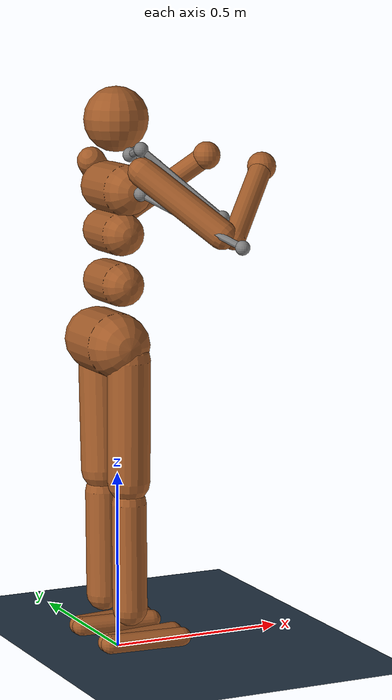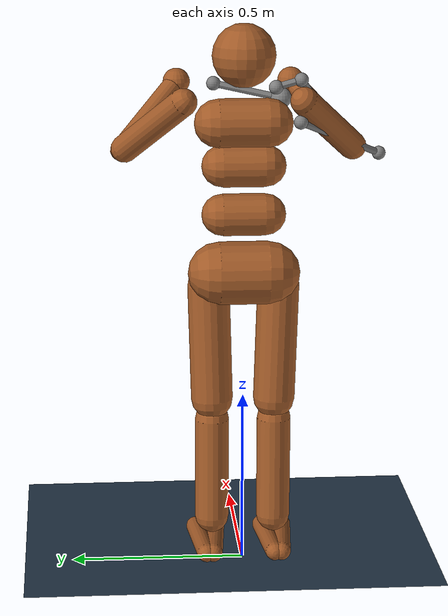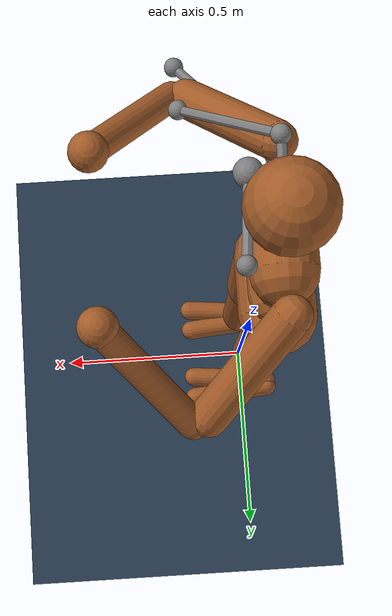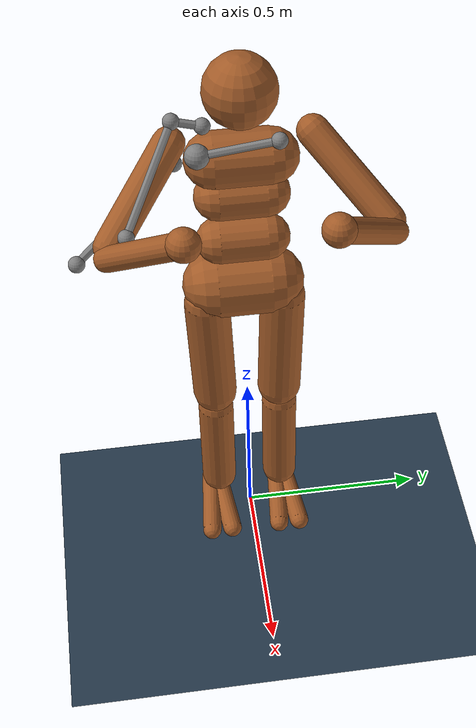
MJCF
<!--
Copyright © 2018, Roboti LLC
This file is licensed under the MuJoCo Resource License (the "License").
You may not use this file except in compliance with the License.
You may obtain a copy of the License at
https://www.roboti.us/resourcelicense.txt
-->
<mujoco model="Humanoid">

    <compiler inertiafromgeom="true" angle="degree"/>

    <default>
        <joint limited="true" damping="1" armature="0"/>
        <geom condim="1" material="matgeom"/>
        <motor ctrlrange="-.4 .4" ctrllimited="true"/>
    </default>

    <option timestep="0.005" iterations="50" tolerance="1e-10" solver="Newton" jacobian="dense" cone="pyramidal"/>

    <size nconmax="50" njmax="200" nstack="10000"/>

    <visual>
        <map force="0.1" zfar="30"/>
        <quality shadowsize="2048"/>
        <global offwidth="800" offheight="800"/>
    </visual>

    <asset>
        <texture type="skybox" builtin="gradient" rgb1="0.3 0.5 0.7" rgb2="0 0 0" width="512" height="512"/>

        <texture name="texplane" type="2d" builtin="checker" rgb1=".2 .3 .4" rgb2=".1 0.15 0.2" width="512" height="512" mark="cross" markrgb=".8 .8 .8"/>

        <texture name="texgeom" type="cube" builtin="flat" mark="cross" width="127" height="1278"
            rgb1="0.8 0.6 0.4" rgb2="0.8 0.6 0.4" markrgb="1 1 1" random="0.01"/>

        <material name="matplane" reflectance="0.3" texture="texplane" texrepeat="1 1" texuniform="true"/>

        <material name="matgeom" texture="texgeom" texuniform="true" rgba="0.8 0.6 .4 1"/>
    </asset>

    <worldbody>
        <geom name="floor" pos="0 0 0" size="1 1 1.25" type="plane" material="matplane" condim="3"/>

        <light directional="false" diffuse=".2 .2 .2" specular="0 0 0" pos="0 0 5" dir="0 0 -1" castshadow="false"/>
        <light mode="targetbodycom" target="torso" directional="false" diffuse=".8 .8 .8" specular="0.3 0.3 0.3" pos="0 0 4.0" dir="0 0 -1"/>

        <body name="torso" pos="0 0 1.3">
            <freejoint name="root"/>
            <geom name="torso1" type="capsule" fromto="0 -.07 0 0 .07 0"  size="0.07"/>
            <site name="s5" pos="0 -0.09 0.1" size="0.02"/>
            <site name="s6" pos="0.08 0.08 0.1" size="0.02"/>
            <geom name="head" type="sphere" pos="0 0 .19" size=".09"/>
            <geom name="uwaist" type="capsule" fromto="-.01 -.06 -.12 -.01 .06 -.12" size="0.06"/>
            <body name="lwaist" pos="-.01 0 -0.260" quat="1.000 0 -0.002 0" >
                <geom name="lwaist" type="capsule" fromto="0 -.06 0 0 .06 0"  size="0.06" />
                <joint name="abdomen_z" type="hinge" pos="0 0 0.065" axis="0 0 1" range="0 1" damping="5" stiffness="20" armature="0.02" />
                <joint name="abdomen_y" type="hinge" pos="0 0 0.065" axis="0 1 0" range="0 1" damping="5" stiffness="10" armature="0.02" />
                <body name="pelvis" pos="0 0 -0.165" quat="1.000 0 -0.002 0" >
                    <joint name="abdomen_x" type="hinge" pos="0 0 0.1" axis="1 0 0" range="0 1" damping="5" stiffness="10" armature="0.02" />
                    <geom name="butt" type="capsule" fromto="-.02 -.07 0 -.02 .07 0"  size="0.09" />
                    <body name="right_thigh" pos="0 -0.1 -0.04" >
                        <joint name="right_hip_x" type="hinge" pos="0 0 0" axis="1 0 0" range="0 5"   damping="5" stiffness="10" armature="0.01" />
                        <joint name="right_hip_z" type="hinge" pos="0 0 0" axis="0 0 1" range="0 3"  damping="5" stiffness="10" armature="0.01" />
                        <joint name="right_hip_y" type="hinge" pos="0 0 0" axis="0 1 0" range="0 2" damping="5" stiffness="20" armature="0.01" />
                        <geom name="right_thigh1" type="capsule" fromto="0 0 0 0 0.01 -.34"  size="0.06" />
                        <body name="right_shin" pos="0 0.01 -0.403" >
                            <joint name="right_knee" type="hinge" pos="0 0 .02" axis="0 -1 0" range="-3 -2" stiffness="1" armature="0.0060" />
                            <geom name="right_shin1" type="capsule" fromto="0 0 0 0 0 -.3"   size="0.049" mass="50"/>
                            <body name="right_foot" pos="0 0 -.39" >
                                <joint name="right_ankle_y" type="hinge" pos="0 0 0.08" axis="0 1 0"   range="0 2" stiffness="4" armature="0.0008" />
                                <joint name="right_ankle_x" type="hinge" pos="0 0 0.04" axis="1 0 0.5" range="0 2" stiffness="1"  armature="0.0006" />
                                <geom name="right_foot_cap1" type="capsule" fromto="-.07 -0.02 0 0.14 -0.04 0"  size="0.027" mass="100"/>
                                <geom name="right_foot_cap2" type="capsule" fromto="-.07 0 0 0.14  0.02 0"  size="0.027" mass="100"/>
                            </body>
                        </body>
                    </body>
                    <body name="left_thigh" pos="0 0.1 -0.04" >
                        <joint name="left_hip_x" type="hinge" pos="0 0 0" axis="-1 0 0" range="0 5"  damping="5" stiffness="10" armature="0.01" />
                        <joint name="left_hip_z" type="hinge" pos="0 0 0" axis="0 0 -1" range="0 3" damping="5" stiffness="10" armature="0.01" />
                        <joint name="left_hip_y" type="hinge" pos="0 0 0" axis="0 1 0" range="0 2" damping="5" stiffness="20" armature="0.01" />
                        <geom name="left_thigh1" type="capsule" fromto="0 0 0 0 -0.01 -.34"  size="0.06" />
                        <body name="left_shin" pos="0 -0.01 -0.403" >
                            <joint name="left_knee" type="hinge" pos="0 0 .02" axis="0 -1 0" range="-3 -2" stiffness="1" armature="0.0060" />
                            <geom name="left_shin1" type="capsule" fromto="0 0 0 0 0 -.3"   size="0.049" mass="50"/>
                            <body name="left_foot" pos="0 0 -.39" >
                                <joint name="left_ankle_y" type="hinge" pos="0 0 0.08" axis="0 1 0"   range="0 2"  stiffness="4" armature="0.0008" />
                                <joint name="left_ankle_x" type="hinge" pos="0 0 0.04" axis="1 0 0.5" range="0 2"  stiffness="1"  armature="0.0006" />
                                <geom name="left_foot_cap1" type="capsule" fromto="-.07 0.02 0 0.14 0.04 0"  size="0.027" mass="100"/>
                                <geom name="left_foot_cap2" type="capsule" fromto="-.07 0 0 0.14  -0.02 0"  size="0.027" mass="100"/>
                            </body>
                        </body>
                    </body>
                </body>
            </body>
            <body name="right_upper_arm" pos="0 -0.17 0.06" >
                <joint name="right_shoulder1" type="hinge" pos="0 0 0" axis="2 1 1"  range="-85 60" stiffness="1" armature="0.0068" />
                <joint name="right_shoulder2" type="hinge" pos="0 0 0" axis="0 -1 1" range="-85 60" stiffness="1"  armature="0.0051" />
                <geom name="right_uarm1" type="capsule" fromto="0 0 0 .16 -.16 -.16"  size="0.04 0.16" />
                <site name="s1" pos="0 0.009 0.06" size="0.02"/>
                <site name="s4" pos="0 0.009 -0.06" size="0.02"/>
                <site name="s9" pos="0.06 0.06 0" size="0.03"/>

                <body name="right_lower_arm" pos=".18 -.18 -.18" >
                    <joint name="right_elbow" type="hinge" pos="0 0 0" axis="0 -1 1" range="-90 50"  stiffness="0" armature="0.0028" />

                    <geom name="right_larm" type="capsule" fromto="0.01 0.01 0.01 .17 .17 .17"  size="0.031" />
                    <geom name="right_hand" type="sphere" pos=".18 .18 .18"  size="0.04"/>
                    <site name="s2" pos="0 0.06 0.06" size="0.02"/>
                    <site name="s3" pos="0 -0.06 -0.006" size="0.02"/>
                </body>
            </body>
            <body name="left_upper_arm" pos="0 0.17 0.06" >
                <joint name="left_shoulder1" type="hinge" pos="0 0 0" axis="2 -1 1" range="0 5" stiffness="1" armature="0.0068" />
                <joint name="left_shoulder2" type="hinge" pos="0 0 0" axis="0 1 1" range="0 5"  stiffness="1" armature="0.0051" />
                <geom name="left_uarm1" type="capsule" fromto="0 0 0 .16 .16 -.16"  size="0.04 0.16" />
                <body name="left_lower_arm" pos=".18 .18 -.18" >
                    <joint name="left_elbow" type="hinge" pos="0 0 0" axis="0 -1 -1" range="0 5" stiffness="0" armature="0.0028" />
                    <geom name="left_larm" type="capsule" fromto="0.01 -0.01 0.01 .17 -.17 .17"  size="0.031" />
                    <geom name="left_hand" type="sphere" pos=".18 -.18 .18"  size="0.04"/>
                </body>
            </body>
        </body>
    </worldbody>

    <tendon>
        <spatial name="SF" width="0.01">
            <site site="s1"/>
            <site site="s2"/>
        </spatial>
        <spatial name="SE" width="0.01">
            <site site="s4"/>
            <site site="s3"/>
        </spatial>
        <spatial name="SK" width="0.01">
            <site site="s5"/>
            <site site="s1"/>
        </spatial>
        <spatial name="SJ" width="0.01">
            <site site="s6"/>
            <site site="s9"/>
        </spatial>

    </tendon>

    <actuator>
        <motor name="abdomen_y"       gear="200" joint="abdomen_y" />
        <motor name="abdomen_z"       gear="200" joint="abdomen_z" />
        <motor name="abdomen_x"       gear="200" joint="abdomen_x" />
        <motor name="right_hip_x"     gear="200" joint="right_hip_x" />
        <motor name="right_hip_z"     gear="200" joint="right_hip_z" />
        <motor name="right_hip_y"     gear="600" joint="right_hip_y" />
        <motor name="right_knee"      gear="400" joint="right_knee" />
        <motor name="right_ankle_x"   gear="100" joint="right_ankle_x" />
        <motor name="right_ankle_y"   gear="100" joint="right_ankle_y" />
        <motor name="left_hip_x"      gear="200" joint="left_hip_x" />
        <motor name="left_hip_z"      gear="200" joint="left_hip_z" />
        <motor name="left_hip_y"      gear="600" joint="left_hip_y" />
        <motor name="left_knee"       gear="400" joint="left_knee" />
        <motor name="left_ankle_x"    gear="100" joint="left_ankle_x" />
        <motor name="left_ankle_y"    gear="100" joint="left_ankle_y" />
        <motor name="right_shoulder1" gear="100" joint="right_shoulder1" />
        <motor name="right_shoulder2" gear="100" joint="right_shoulder2" />
        <motor name="right_elbow"     gear="200" joint="right_elbow" />
        <motor name="left_shoulder1"  gear="100" joint="left_shoulder1" />
        <motor name="left_shoulder2"  gear="100" joint="left_shoulder2" />
        <motor name="left_elbow"      gear="200" joint="left_elbow" />
        <motor name="SF" gear="200" tendon="SF"/>
        <motor name="SE" gear="200" tendon="SE"/>
        <motor name="SK" gear="200" tendon="SK"/>
        <motor name="SJ" gear="200" tendon="SJ"/>
    </actuator>

</mujoco>
